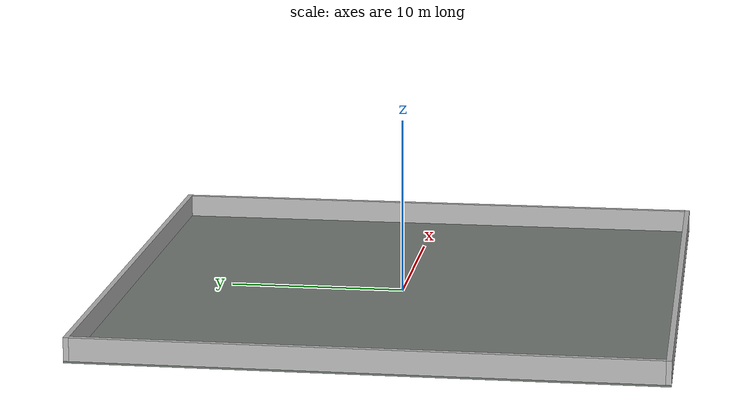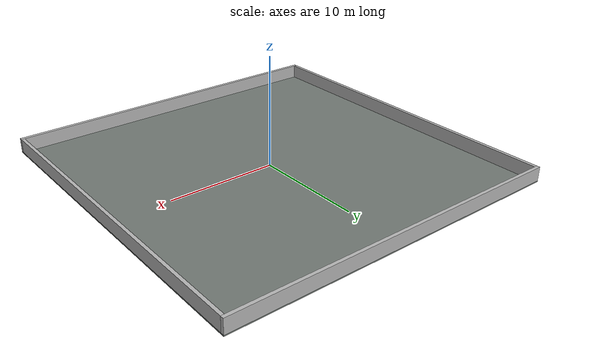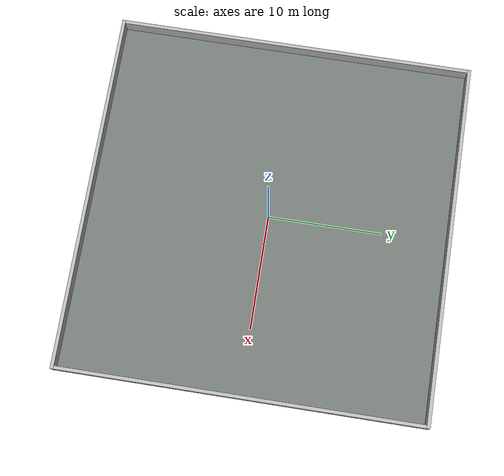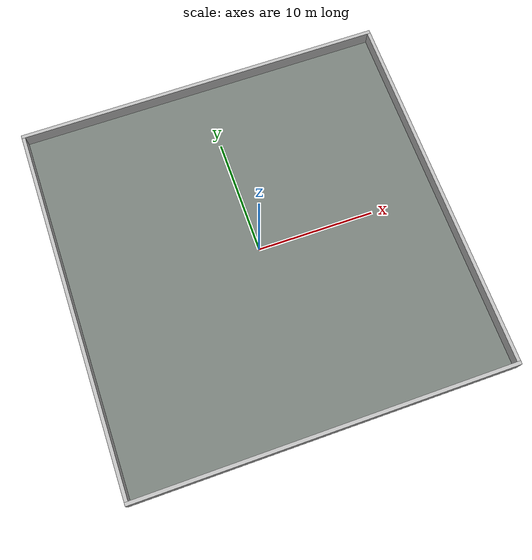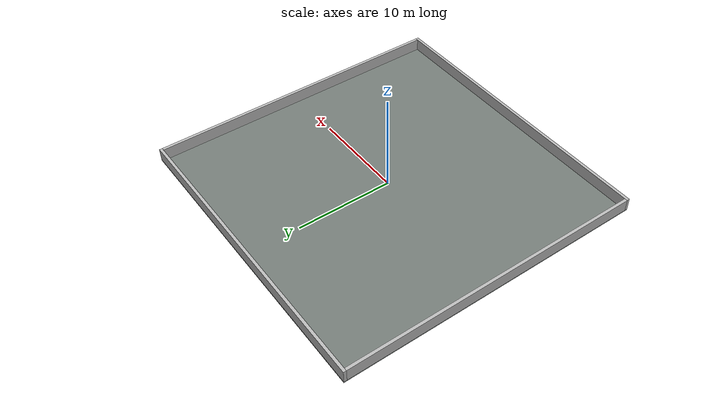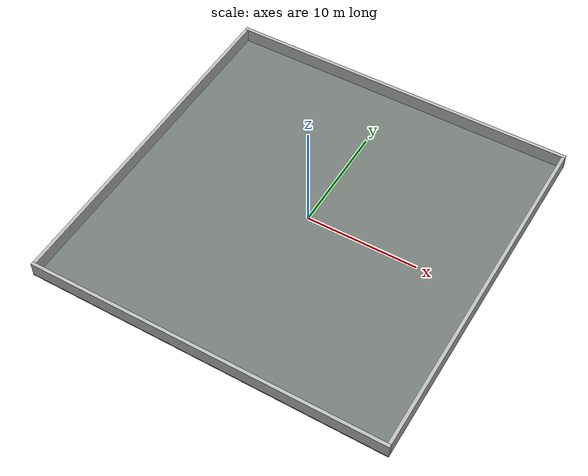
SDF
<?xml version="1.0"?>
<sdf version="1.6">
  <world name="cleannav_patrol_demo_large_v1">
    <gravity>0 0 -9.8</gravity>
    <physics name="default_physics" type="ode">
      <max_step_size>0.001</max_step_size>
      <real_time_factor>1</real_time_factor>
      <real_time_update_rate>1000</real_time_update_rate>
    </physics>
    <scene>
      <ambient>0.65 0.65 0.65 1</ambient>
      <background>0.72 0.80 0.86 1</background>
      <shadows>false</shadows>
    </scene>
    <light name="sun" type="directional">
      <pose>0 0 20 0 0 0</pose>
      <direction>-0.3 -0.4 -1</direction>
    </light>
    <model name="demo_floor">
      <static>true</static>
      <pose>0 0 -0.05 0 0 0</pose>
      <link name="surface">
        <collision name="floor_collision"><geometry><box><size>32 32 0.1</size></box></geometry></collision>
        <visual name="floor_visual">
          <geometry><box><size>32 32 0.1</size></box></geometry>
          <material><ambient>0.45 0.48 0.46 1</ambient><diffuse>0.45 0.48 0.46 1</diffuse></material>
        </visual>
      </link>
    </model>
    <model name="wall_west"><static>true</static><pose>-15.85 0 0.65 0 0 0</pose><link name="body"><collision name="physical"><geometry><box><size>0.3 31.4 1.3</size></box></geometry></collision><visual name="appearance"><geometry><box><size>0.3 31.4 1.3</size></box></geometry></visual></link></model>
    <model name="wall_east"><static>true</static><pose>15.85 0 0.65 0 0 0</pose><link name="body"><collision name="physical"><geometry><box><size>0.3 31.4 1.3</size></box></geometry></collision><visual name="appearance"><geometry><box><size>0.3 31.4 1.3</size></box></geometry></visual></link></model>
    <model name="wall_south"><static>true</static><pose>0 -15.85 0.65 0 0 0</pose><link name="body"><collision name="physical"><geometry><box><size>32 0.3 1.3</size></box></geometry></collision><visual name="appearance"><geometry><box><size>32 0.3 1.3</size></box></geometry></visual></link></model>
    <model name="wall_north"><static>true</static><pose>0 15.85 0.65 0 0 0</pose><link name="body"><collision name="physical"><geometry><box><size>32 0.3 1.3</size></box></geometry></collision><visual name="appearance"><geometry><box><size>32 0.3 1.3</size></box></geometry></visual></link></model>
  </world>
</sdf>
